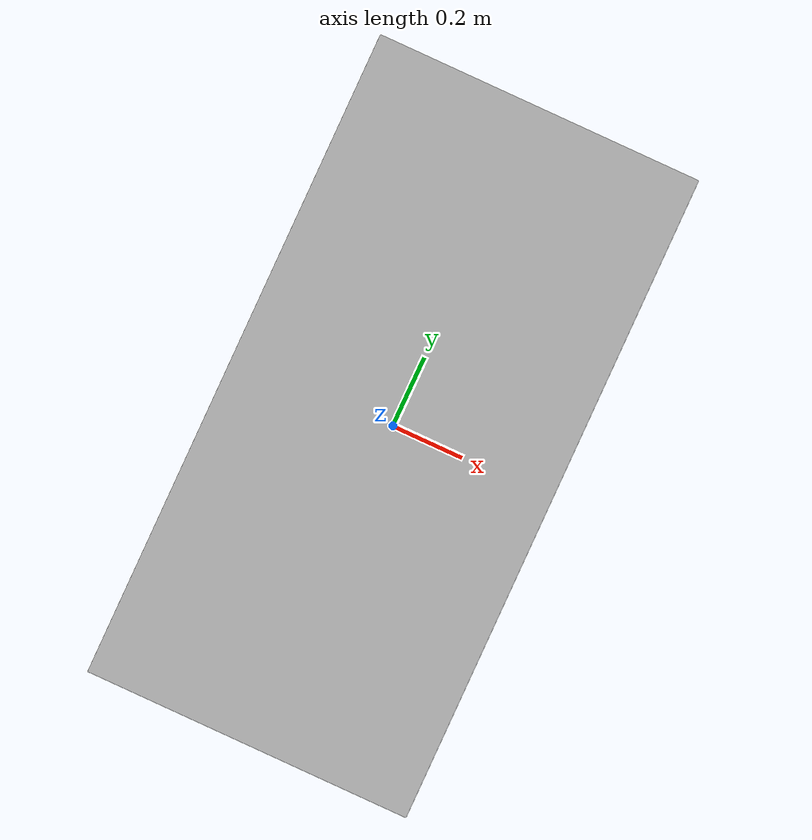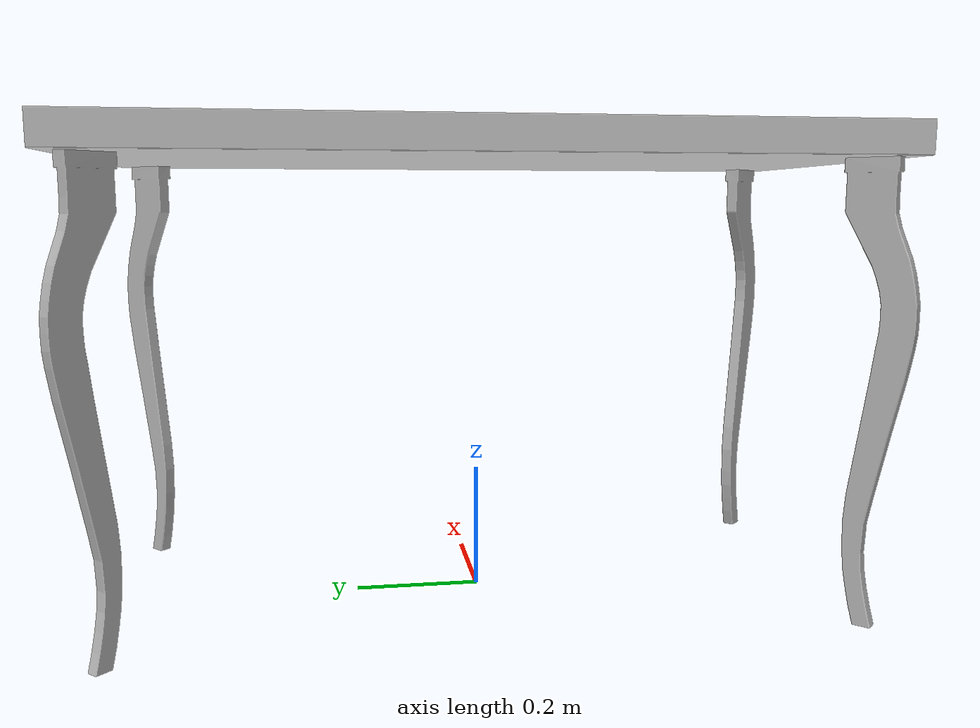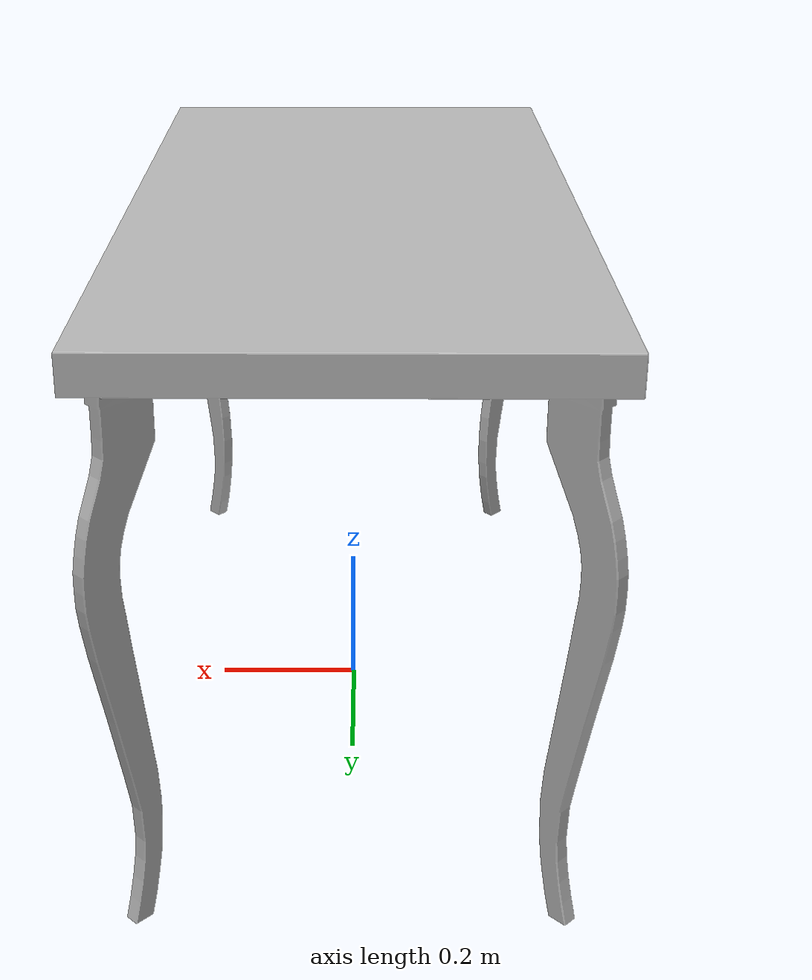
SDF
<?xml version='1.0'?>
<sdf version='1.4'>
  <model name='s__715'>
    <pose>0 0 0 0 0 0</pose>
    <static>true</static>
    <link name='link'>
      <collision name='collision'>
        <pose>0 0 0 0 0 0</pose>
        <geometry>
          <box>
            <size>0.6 1.2 2</size>
          </box>
        </geometry>
      </collision>
      <visual name='visual'>
        <pose>0 0 0 0 0 0</pose>
        <geometry>
          <mesh><uri>model://s__715/s__715.dae</uri></mesh>
        </geometry>
      </visual>
    </link>
  </model>
</sdf>
